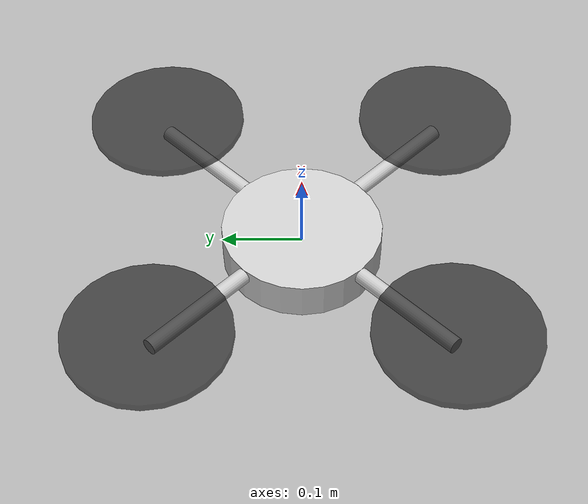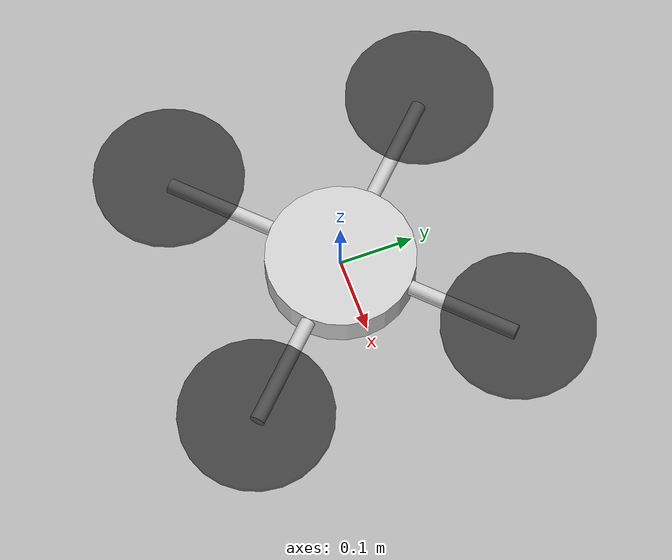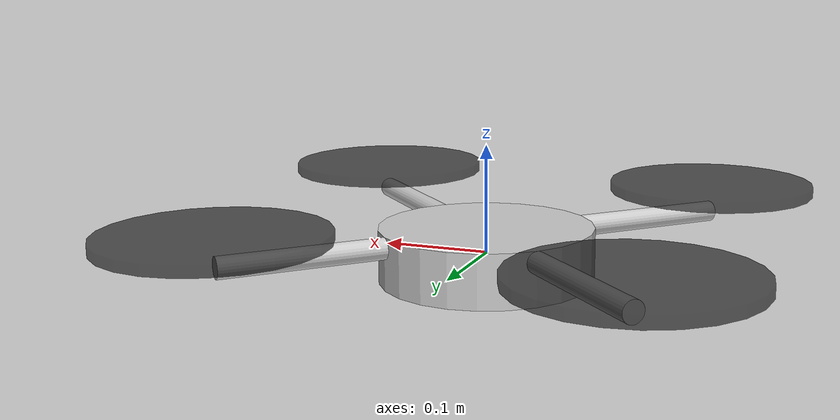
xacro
<?xml version="1.0"?>
<robot xmlns:xacro="http://wiki.ros.org/xacro" name="drone">

  <!-- properties -->
  <xacro:property name="frame_radius" value="0.1"/>
  <xacro:property name="frame_height" value="0.05"/>
  <xacro:property name="frame_mass" value="0.88"/>
  <xacro:property name="arm_radius" value="0.01"/>
  <xacro:property name="arm_length" value="0.15"/>
  <xacro:property name="arm_mass" value="0.01"/>
  <xacro:property name="propeller_radius" value="0.1"/>
  <xacro:property name="propeller_height" value="0.01"/>
  <xacro:property name="propeller_height_offset" value="0.025"/>
  <xacro:property name="propeller_mass" value="0.01"/>

  <xacro:macro name="cylinder_inertial" params="radius height mass *origin">
    <inertial>
      <mass value="${mass}"/>
      <xacro:insert_block name="origin"/>
      <inertia
        ixx="${0.0833333 * mass * (3 * radius * radius + height * height)}"
        ixy="0.0"
        ixz="0.0"
        iyy="${0.0833333 * mass * (3 * radius * radius + height * height)}"
        iyz="0.0"
        izz="${0.5 * mass * radius * radius}"
      />
    </inertial>
  </xacro:macro>

  <xacro:macro name="arm" params="i">
    <link name="arm${i}">
      <visual>
        <origin xyz="${cos((i-1)*pi/2+pi/4)*(frame_radius+arm_length/2)} ${sin((i-1)*pi/2+pi/4)*(frame_radius+arm_length/2)} ${frame_height/2-arm_radius}" rpy="0 ${pi/2} ${(i-1)*pi/2+pi/4}"/>
        <geometry>
          <cylinder radius="${arm_radius}" length="${arm_length}"/>
        </geometry>
        <material name="arm_material"/>
      </visual>
      <collision>
        <origin xyz="${cos((i-1)*pi/2+pi/4)*(frame_radius+arm_length/2)} ${sin((i-1)*pi/2+pi/4)*(frame_radius+arm_length/2)} ${frame_height/2-arm_radius}" rpy="0 ${pi/2} ${(i-1)*pi/2+pi/4}"/>
        <geometry>
          <cylinder radius="${arm_radius}" length="${arm_length}"/>
        </geometry>
      </collision>
      <xacro:cylinder_inertial radius="${arm_radius}" height="${arm_length}" mass="${arm_mass}">
        <origin xyz="${cos((i-1)*pi/2+pi/4)*(frame_radius+arm_length/2)} ${sin((i-1)*pi/2+pi/4)*(frame_radius+arm_length/2)} ${frame_height/2-arm_radius}" rpy="0 ${pi/2} ${(i-1)*pi/2+pi/4}s"/>
      </xacro:cylinder_inertial>
    </link>

    <joint name="frame_arm${i}" type="fixed">
      <parent link="frame"/>
      <child link="arm${i}"/>
    </joint>

    <gazebo reference="arm${i}">
      <material>Gazebo/Grey</material>
    </gazebo>
  </xacro:macro>

  <xacro:macro name="propeller" params="i mat">
    <link name="propeller${i}">
      <visual>
        <origin xyz="0 0 0" rpy="0 0 0"/>
        <geometry>
          <cylinder radius="${propeller_radius}" length="${propeller_height}"/>
        </geometry>
        <material name="propeller_material"/>
      </visual>
      <collision>
        <origin xyz="0 0 0" rpy="0 0 0"/>
        <geometry>
          <cylinder radius="${propeller_radius}" length="${propeller_height}"/>
        </geometry>
      </collision>
      <xacro:cylinder_inertial radius="${propeller_radius}" height="${propeller_height}" mass="${propeller_mass}">
        <origin xyz="0 0 0" rpy="0 0 0"/>
      </xacro:cylinder_inertial>
    </link>

    <joint name="arm${i}_propeller${i}" type="revolute">
      <parent link="arm${i}"/>
      <child link="propeller${i}"/>
      <origin xyz="${cos((i-1)*pi/2+pi/4)*(frame_radius+arm_length)} ${sin((i-1)*pi/2+pi/4)*(frame_radius+arm_length)} ${frame_height/2-arm_radius+propeller_height_offset}" rpy="0 0 0"/>
      <axis xyz="0 0 1"/>
      <limit lower="0" upper="0" effort="0" velocity="0"/>
    </joint>

    <gazebo reference="propeller${i}">
      <material>${mat}</material>
    </gazebo>
  </xacro:macro>

  <material name="frame_material">
    <color rgba="1 0.2 0.2 1"/>
  </material>

  <material name="arm_material">
    <color rgba="0.8 0.8 0.8 1"/>
  </material>

  <material name="propeller_material">
    <color rgba="0 0 0 0.6"/>
  </material>

  <link name="frame">
    <visual>
      <origin xyz="0 0 0" rpy="0 0 0"/>
      <geometry>
        <cylinder radius="${frame_radius}" length="${frame_height}"/>
      </geometry>
      <material name="frame_material">
        <color rgba="0.8 0.8 0.8 1.0"/>
      </material>
    </visual>
    <collision>
      <origin xyz="0 0 0" rpy="0 0 0"/>
      <geometry>
        <cylinder radius="${frame_radius}" length="${frame_height}"/>
      </geometry>
    </collision>
    <xacro:cylinder_inertial radius="${frame_radius}" height="${frame_height}" mass="${frame_mass}">
      <origin xyz="0 0 0" rpy="0 0 0" />
    </xacro:cylinder_inertial>
  </link>

  <gazebo reference="frame">
    <material>Gazebo/Orange</material>
  </gazebo>

 <xacro:arm i="1"/>
  <xacro:arm i="2"/>
  <xacro:arm i="3"/>
  <xacro:arm i="4"/>

  <xacro:propeller i="1" mat="Gazebo/RedTransparent"/>
  <xacro:propeller i="2" mat="Gazebo/BlueTransparent"/>
  <xacro:propeller i="3" mat="Gazebo/BlueTransparent"/>
  <xacro:propeller i="4" mat="Gazebo/RedTransparent"/>
</robot>
